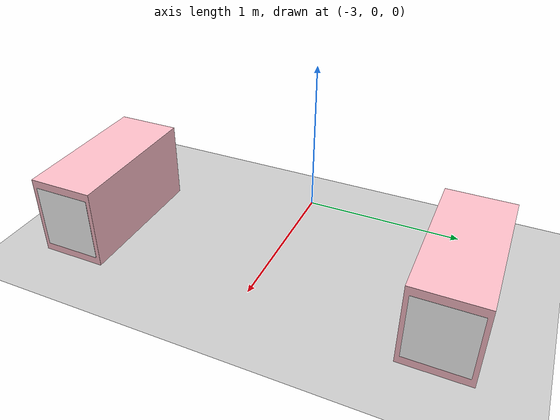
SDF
<sdf version="1.9">
 <world name="pig_pen_16units_world">
  <model name="ground_plane">
   <static>true</static>
   <link name="link">
    <collision name="collision">
     <geometry><plane><normal>0 0 1</normal><size>30 30</size></plane></geometry>
     <surface><friction><ode><mu>1.0</mu><mu2>1.0</mu2></ode></friction></surface>
    </collision>
    <visual name="visual">
     <geometry><plane><normal>0 0 1</normal><size>30 30</size></plane></geometry>
     <material>
      <ambient>0.8 0.8 0.8 1</ambient>
      <diffuse>0.8 0.8 0.8 1</diffuse>
      <specular>0.2 0.2 0.2 1</specular>
     </material>
    </visual>
   </link>
  </model>
  <include><uri>model://farm_pig</uri><name>pig3_a</name><pose>-2.275 -1.095 0.27 0 0 0</pose></include>
  <include><uri>model://farm_pig</uri><name>pig6_b</name><pose>-2.275 1.095 0.27 0 0 0</pose></include>
 </world>
</sdf>
